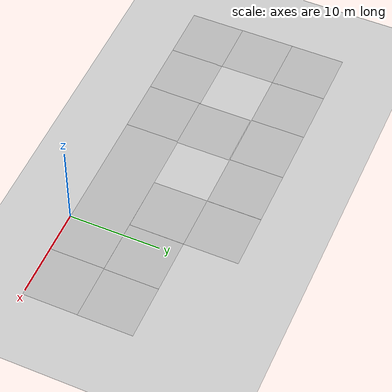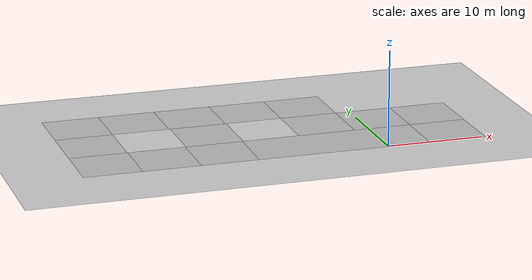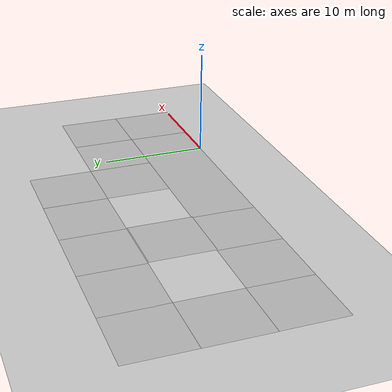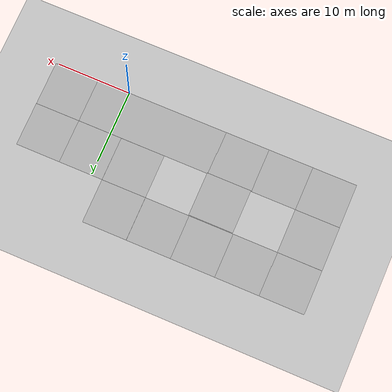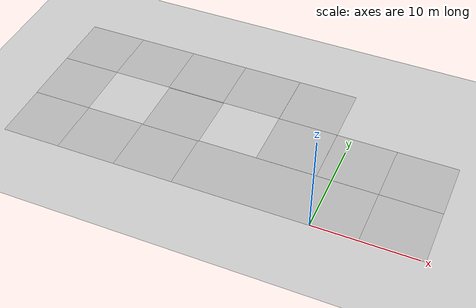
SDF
<sdf version="1.5">
 <world name="default">
  <light name="sun" type="directional">
   <cast_shadows>0</cast_shadows>
   <pose>0 0 10 0 -0 0</pose>
   <diffuse>0.8 0.8 0.8 1</diffuse>
   <specular>0.2 0.2 0.2 1</specular>
   <attenuation>
    <range>1000</range>
    <constant>0.9</constant>
    <linear>0.01</linear>
    <quadratic>0.001</quadratic>
   </attenuation>
   <direction>-0.5 0.1 -0.9</direction>
  </light>
  <model name="ground_plane">
   <static>1</static>
   <link name="link">
    <collision name="collision">
     <geometry><plane><normal>0 0 1</normal><size>100 100</size></plane></geometry>
     <surface><friction><ode><mu>100</mu><mu2>50</mu2></ode></friction></surface>
    </collision>
    <visual name="visual">
     <cast_shadows>0</cast_shadows>
     <geometry><plane><normal>0 0 1</normal><size>100 100</size></plane></geometry>
     <material>
      <script><uri>file://media/materials/scripts/gazebo.material</uri><name>Gazebo/Grey</name></script>
     </material>
    </visual>
   </link>
  </model>
  <physics type="ode">
   <real_time_update_rate>1000</real_time_update_rate>
   <ode>
    <solver>
     <type>quick</type>
     <iters>70</iters>
     <sor>1.3</sor>
     <use_dynamic_moi_rescaling>0</use_dynamic_moi_rescaling>
    </solver>
    <constraints>
     <cfm>0</cfm>
     <erp>0.2</erp>
     <contact_max_correcting_vel>100</contact_max_correcting_vel>
     <contact_surface_layer>0.001</contact_surface_layer>
    </constraints>
   </ode>
   <max_step_size>0.001</max_step_size>
   <real_time_factor>1</real_time_factor>
   <gravity>0 0 -9.8</gravity>
   <magnetic_field>5.5645e-06 2.28758e-05 -4.23884e-05</magnetic_field>
  </physics>
  <scene><ambient>0.4 0.4 0.4 1</ambient><background>0.7 0.7 0.7 1</background><shadows>1</shadows></scene>
  <spherical_coordinates>
   <surface_model>EARTH_WGS84</surface_model>
   <latitude_deg>0</latitude_deg>
   <longitude_deg>0</longitude_deg>
   <elevation>0</elevation>
   <heading_deg>0</heading_deg>
  </spherical_coordinates>
  <audio><device>default</device></audio>
  <include><uri>model://road_diag_v2</uri><name>road_diag</name><pose>7.46142 3 0.01 0 0 -1.57</pose></include>
  <include><uri>model://road_diag_v2</uri><name>road_diag_0</name><pose>7.47392 9 0.01 0 0 0</pose></include>
  <include>
   <uri>model://road_diag_v2</uri>
   <name>road_diag_1</name>
   <pose>-4.49851 9.0036 0.01 0 0 -3.14</pose>
  </include>
  <include>
   <uri>model://road_diag_v2</uri>
   <name>road_diag_2</name>
   <pose>-4.49563 14.9977 0.01 0 -0 0</pose>
  </include>
  <include>
   <uri>model://road_diag_v2</uri>
   <name>road_diag_3</name>
   <pose>-28.4361 15 0.01 0 -0 1.57</pose>
  </include>
  <include>
   <uri>model://road_diag_v2</uri>
   <name>road_diag_4</name>
   <pose>-28.4086 3 0.01 0 0 -3.14</pose>
  </include>
  <include>
   <uri>model://road_inter_v2</uri>
   <name>road_inter</name>
   <pose>-16.4785 3 0.01 0 -0 1.57</pose>
  </include>
  <include>
   <uri>model://road_inter_v2</uri>
   <name>road_inter_0</name>
   <pose>-16.4966 15 0.01 0 0 -1.57</pose>
  </include>
  <include>
   <uri>model://road_plane_v2</uri>
   <name>road_plane</name>
   <pose>-22.4501 3 0.01 0 0 -1.57</pose>
  </include>
  <include>
   <uri>model://road_plane_v2</uri>
   <name>road_plane_0</name>
   <pose>-16.3911 8.92216 0.027166 0 -0 0</pose>
  </include>
  <include>
   <uri>model://road_plane_v2</uri>
   <name>road_plane_1</name>
   <pose>-22.4897 14.999 0.01 0 0 -1.57</pose>
  </include>
  <include>
   <uri>model://road_plane_v2</uri>
   <name>road_plane_2</name>
   <pose>-10.5068 15 0.01 0 0 -1.57</pose>
  </include>
  <include>
   <uri>model://road_plane_3_v2</uri>
   <name>road_plane_3</name>
   <pose>-4.53361 3 0.01 0 -0 1.57</pose>
  </include>
  <include>
   <uri>model://road_plane_v2</uri>
   <name>road_plane_4</name>
   <pose>1.50532 9 0.01 0 -0 1.57</pose>
  </include>
  <include>
   <uri>model://road_plane_v2</uri>
   <name>road_plane_5</name>
   <pose>-28.4368 9 0.01 0 0 -3.14</pose>
  </include>
 </world>
</sdf>

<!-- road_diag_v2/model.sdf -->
<sdf version='1.4'>
  <model name='road_diag_v2'>
    <static>1</static>
      <link name='link'>
        <collision name='collision'>
          <geometry>
            <plane>
              <normal>0 0 1</normal>
              <size>6 6</size>
            </plane>
          </geometry>
          <surface>
            <friction>
              <ode>
                <mu>100</mu>
                <mu2>50</mu2>
              </ode>
            </friction>
            <contact>
              <ode/>
            </contact>
            <bounce/>
          </surface>
          <max_contacts>10</max_contacts>
        </collision>

        <visual name='visual'>
          <cast_shadows>0</cast_shadows>
          <geometry>
            <mesh>
            <uri>model://road_diag_v2/meshes/road_diag_v2.dae</uri>
          </mesh>
          </geometry>
        </visual>
        <self_collide>0</self_collide>
        <kinematic>0</kinematic>
        <gravity>1</gravity>
      </link>
      <pose>0 0 0 0 -0 0</pose>
  </model>
</sdf>

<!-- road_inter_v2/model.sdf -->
<sdf version='1.4'>
  <model name='road_inter_v2'>
    <static>1</static>
      <link name='link'>
        <collision name='collision'>
          <geometry>
            <plane>
              <normal>0 0 1</normal>
              <size>6 6</size>
            </plane>
          </geometry>
          <surface>
            <friction>
              <ode>
                <mu>100</mu>
                <mu2>50</mu2>
              </ode>
            </friction>
            <contact>
              <ode/>
            </contact>
            <bounce/>
          </surface>
          <max_contacts>10</max_contacts>
        </collision>

        <visual name='visual'>
          <cast_shadows>0</cast_shadows>
          <geometry>
            <mesh>
            <uri>model://road_inter_v2/meshes/road_inter_v2.dae</uri>
          </mesh>
          </geometry>
        </visual>
        <self_collide>0</self_collide>
        <kinematic>0</kinematic>
        <gravity>1</gravity>
      </link>
      <pose>0 0 0 0 -0 0</pose>
  </model>
</sdf>

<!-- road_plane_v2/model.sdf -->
<sdf version='1.4'>
  <model name='road_plane_v2'>
    <static>1</static>
      <link name='link'>
        <collision name='collision'>
          <geometry>
            <plane>
              <normal>0 0 1</normal>
              <size>6 6</size>
            </plane>
          </geometry>
          <surface>
            <friction>
              <ode>
                <mu>100</mu>
                <mu2>50</mu2>
              </ode>
            </friction>
            <contact>
              <ode/>
            </contact>
            <bounce/>
          </surface>
          <max_contacts>10</max_contacts>
        </collision>

        <visual name='visual'>
          <cast_shadows>0</cast_shadows>
          <geometry>
            <mesh>
            <uri>model://road_plane_v2/meshes/road_plane_v2.dae</uri>
          </mesh>
          </geometry>
        </visual>
        <self_collide>0</self_collide>
        <kinematic>0</kinematic>
        <gravity>1</gravity>
      </link>
      <pose>0 0 0 0 -0 0</pose>
  </model>
</sdf>

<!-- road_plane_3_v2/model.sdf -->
<sdf version='1.4'>
  <model name='road_plane_3_v2'>
    <static>1</static>
      <link name='link'>
        <collision name='collision'>
          <geometry>
            <plane>
              <normal>0 0 1</normal>
              <size>18 6</size>
            </plane>
          </geometry>
          <surface>
            <friction>
              <ode>
                <mu>100</mu>
                <mu2>50</mu2>
              </ode>
            </friction>
            <contact>
              <ode/>
            </contact>
            <bounce/>
          </surface>
          <max_contacts>10</max_contacts>
        </collision>

        <visual name='visual'>
          <cast_shadows>0</cast_shadows>
          <geometry>
            <mesh>
            <uri>model://road_plane_3_v2/meshes/road_plane_3_v2.dae</uri>
          </mesh>
          </geometry>
        </visual>
        <self_collide>0</self_collide>
        <kinematic>0</kinematic>
        <gravity>1</gravity>
      </link>
      <pose>0 0 0 0 -0 0</pose>
  </model>
</sdf>
